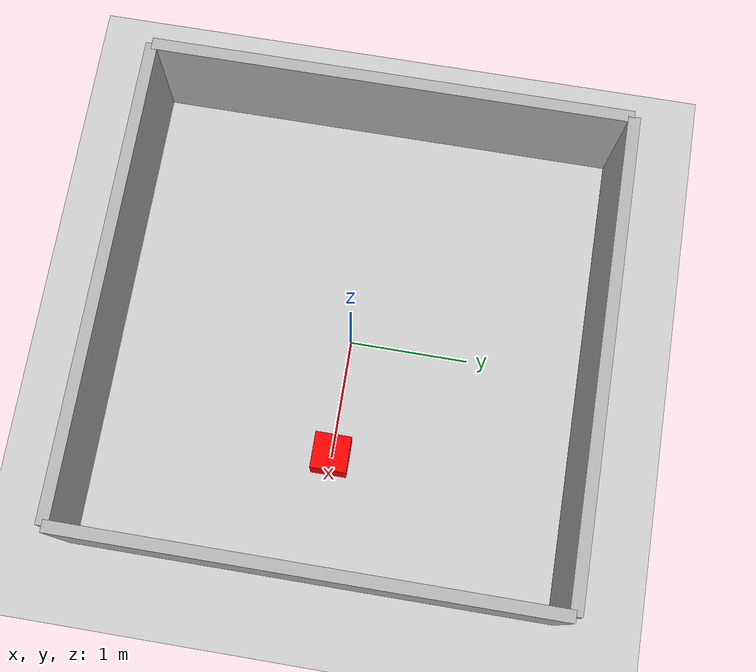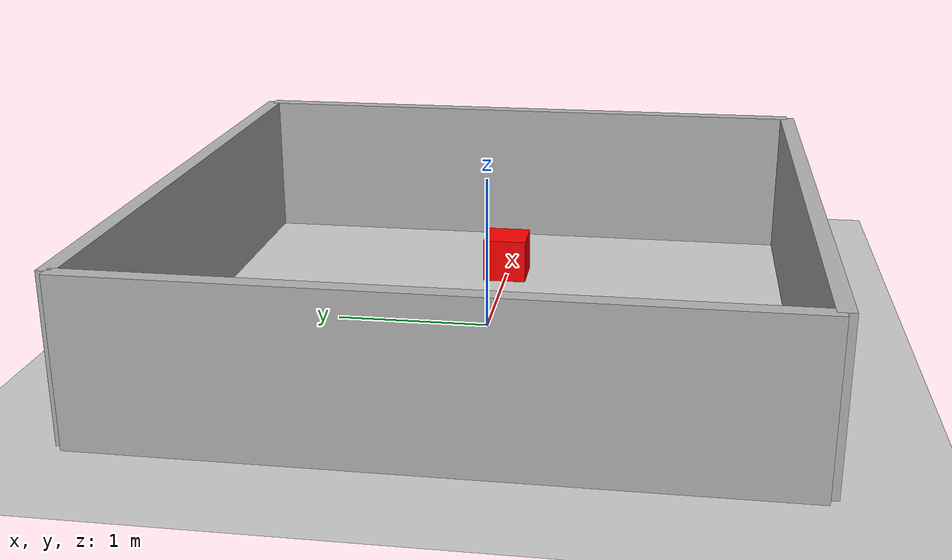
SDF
<?xml version="1.0"?>
<sdf version="1.10">
  <world name="empty">

    <physics name="1ms" type="ignored">
      <max_step_size>0.001</max_step_size>
      <real_time_factor>1.0</real_time_factor>
    </physics>

    <plugin filename="gz-sim-physics-system"
            name="gz::sim::systems::Physics"/>
    <plugin filename="gz-sim-user-commands-system"
            name="gz::sim::systems::UserCommands"/>
    <plugin filename="gz-sim-scene-broadcaster-system"
            name="gz::sim::systems::SceneBroadcaster"/>
    <plugin filename="gz-sim-sensors-system"
            name="gz::sim::systems::Sensors">
      <render_engine>ogre2</render_engine>
    </plugin>

    <plugin filename="gz-sim-lidar-system"
            name="gz::sim::systems::Lidar"/>

    <light type="directional" name="sun">
      <cast_shadows>true</cast_shadows>
      <pose>0 0 10 0 0 0</pose>
      <diffuse>0.8 0.8 0.8 1</diffuse>
      <specular>0.2 0.2 0.2 1</specular>
      <direction>-0.5 0.1 -0.9</direction>
    </light>

    <model name="ground_plane">
      <static>true</static>
      <link name="link">
        <collision name="collision">
          <geometry>
            <plane>
              <normal>0 0 1</normal>
              <size>100 100</size>
            </plane>
          </geometry>
        </collision>
        <visual name="visual">
          <geometry>
            <plane>
              <normal>0 0 1</normal>
              <size>100 100</size>
            </plane>
          </geometry>
          <material>
            <ambient>0.8 0.8 0.8 1</ambient>
            <diffuse>0.8 0.8 0.8 1</diffuse>
          </material>
        </visual>
      </link>
    </model>
        <!-- Tuong bao quanh 4m x 4m -->
    <model name="wall_north">
      <static>true</static>
      <pose>0 2 0.5 0 0 0</pose>
      <link name="link">
        <collision name="c">
          <geometry><box><size>4 0.1 1</size></box></geometry>
        </collision>
        <visual name="v">
          <geometry><box><size>4 0.1 1</size></box></geometry>
          <material>
            <ambient>0.7 0.7 0.7 1</ambient>
            <diffuse>0.7 0.7 0.7 1</diffuse>
          </material>
        </visual>
      </link>
    </model>

    <model name="wall_south">
      <static>true</static>
      <pose>0 -2 0.5 0 0 0</pose>
      <link name="link">
        <collision name="c">
          <geometry><box><size>4 0.1 1</size></box></geometry>
        </collision>
        <visual name="v">
          <geometry><box><size>4 0.1 1</size></box></geometry>
          <material>
            <ambient>0.7 0.7 0.7 1</ambient>
            <diffuse>0.7 0.7 0.7 1</diffuse>
          </material>
        </visual>
      </link>
    </model>

    <model name="wall_east">
      <static>true</static>
      <pose>2 0 0.5 0 0 0</pose>
      <link name="link">
        <collision name="c">
          <geometry><box><size>0.1 4 1</size></box></geometry>
        </collision>
        <visual name="v">
          <geometry><box><size>0.1 4 1</size></box></geometry>
          <material>
            <ambient>0.7 0.7 0.7 1</ambient>
            <diffuse>0.7 0.7 0.7 1</diffuse>
          </material>
        </visual>
      </link>
    </model>

    <model name="wall_west">
      <static>true</static>
      <pose>-2 0 0.5 0 0 0</pose>
      <link name="link">
        <collision name="c">
          <geometry><box><size>0.1 4 1</size></box></geometry>
        </collision>
        <visual name="v">
          <geometry><box><size>0.1 4 1</size></box></geometry>
          <material>
            <ambient>0.7 0.7 0.7 1</ambient>
            <diffuse>0.7 0.7 0.7 1</diffuse>
          </material>
        </visual>
      </link>
    </model>

    <!-- Vat can chinh giua truoc mat robot -->
    <model name="obstacle_center">
      <static>true</static>
      <pose>1.0 0 0.15 0 0 0</pose>
      <link name="link">
        <collision name="c">
          <geometry><box><size>0.3 0.3 0.3</size></box></geometry>
        </collision>
        <visual name="v">
          <geometry><box><size>0.3 0.3 0.3</size></box></geometry>
          <material>
            <ambient>1 0 0 1</ambient>
            <diffuse>1 0 0 1</diffuse>
          </material>
        </visual>
      </link>
    </model>

  </world>
</sdf>
